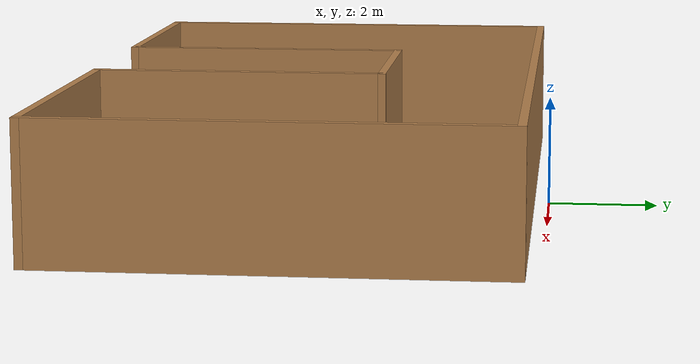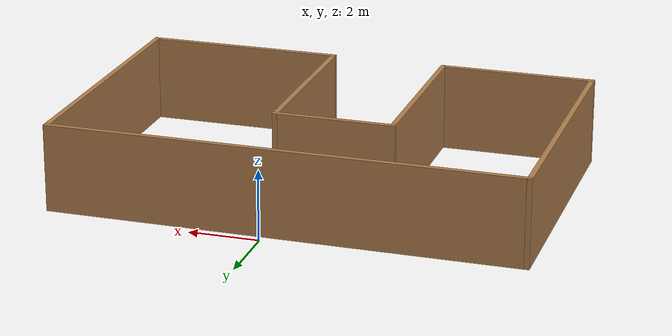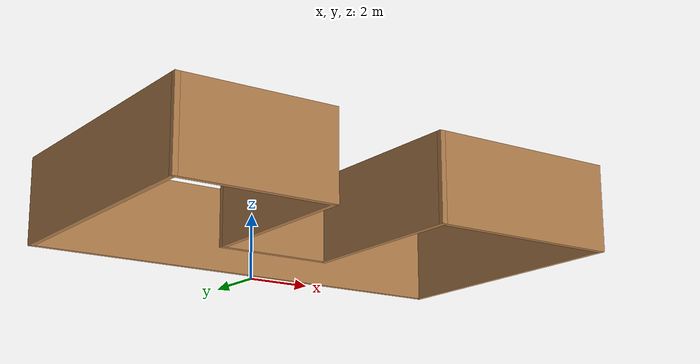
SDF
<?xml version='1.0'?>
<sdf version='1.6'>
  <model name='my_world'>
    <pose frame=''>-0.499181 -4.39383 0 0 -0 0</pose>
    <link name='Wall_10'>
      <collision name='Wall_10_Collision'>
        <geometry>
          <box>
            <size>8.25 0.15 2.5</size>
          </box>
        </geometry>
        <pose frame=''>0 0 1.25 0 -0 0</pose>
      </collision>
      <visual name='Wall_10_Visual'>
        <pose frame=''>0 0 1.25 0 -0 0</pose>
        <geometry>
          <box>
            <size>8.25 0.15 2.5</size>
          </box>
        </geometry>
        <material>
          <script>
            <uri>file://media/materials/scripts/gazebo.material</uri>
            <name>Gazebo/Wood</name>
          </script>
          <ambient>1 1 1 1</ambient>
        </material>
      </visual>
      <pose frame=''>-6.675 0 0 0 -0 1.5708</pose>
    </link>
    <link name='Wall_11'>
      <collision name='Wall_11_Collision'>
        <geometry>
          <box>
            <size>13.5 0.15 2.5</size>
          </box>
        </geometry>
        <pose frame=''>0 0 1.25 0 -0 0</pose>
      </collision>
      <visual name='Wall_11_Visual'>
        <pose frame=''>0 0 1.25 0 -0 0</pose>
        <geometry>
          <box>
            <size>13.5 0.15 2.5</size>
          </box>
        </geometry>
        <material>
          <script>
            <uri>file://media/materials/scripts/gazebo.material</uri>
            <name>Gazebo/Wood</name>
          </script>
          <ambient>1 1 1 1</ambient>
        </material>
      </visual>
      <pose frame=''>0 4.05 0 0 -0 0</pose>
    </link>
    <link name='Wall_12'>
      <collision name='Wall_12_Collision'>
        <geometry>
          <box>
            <size>8.25 0.15 2.5</size>
          </box>
        </geometry>
        <pose frame=''>0 0 1.25 0 -0 0</pose>
      </collision>
      <visual name='Wall_12_Visual'>
        <pose frame=''>0 0 1.25 0 -0 0</pose>
        <geometry>
          <box>
            <size>8.25 0.15 2.5</size>
          </box>
        </geometry>
        <material>
          <script>
            <uri>file://media/materials/scripts/gazebo.material</uri>
            <name>Gazebo/Wood</name>
          </script>
          <ambient>1 1 1 1</ambient>
        </material>
      </visual>
      <pose frame=''>6.675 0 0 0 0 -1.5708</pose>
    </link>
    <link name='Wall_13'>
      <collision name='Wall_13_Collision'>
        <geometry>
          <box>
            <size>5.75 0.15 2.5</size>
          </box>
        </geometry>
        <pose frame=''>0 0 1.25 0 -0 0</pose>
      </collision>
      <visual name='Wall_13_Visual'>
        <pose frame=''>0 0 1.25 0 -0 0</pose>
        <geometry>
          <box>
            <size>5.75 0.15 2.5</size>
          </box>
        </geometry>
        <material>
          <script>
            <uri>file://media/materials/scripts/gazebo.material</uri>
            <name>Gazebo/Wood</name>
          </script>
          <ambient>1 1 1 1</ambient>
        </material>
      </visual>
      <pose frame=''>3.875 -4.05 0 0 -0 3.14159</pose>
    </link>
    <link name='Wall_14'>
      <collision name='Wall_14_Collision'>
        <geometry>
          <box>
            <size>5.5 0.15 2.5</size>
          </box>
        </geometry>
        <pose frame=''>0 0 1.25 0 -0 0</pose>
      </collision>
      <visual name='Wall_14_Visual'>
        <pose frame=''>0 0 1.25 0 -0 0</pose>
        <geometry>
          <box>
            <size>5.5 0.15 2.5</size>
          </box>
        </geometry>
        <material>
          <script>
            <uri>file://media/materials/scripts/gazebo.material</uri>
            <name>Gazebo/Wood</name>
          </script>
          <ambient>1 1 1 1</ambient>
        </material>
      </visual>
      <pose frame=''>1.075 -1.375 0 0 -0 1.5708</pose>
    </link>
    <link name='Wall_15'>
      <collision name='Wall_15_Collision'>
        <geometry>
          <box>
            <size>3.5 0.15 2.5</size>
          </box>
        </geometry>
        <pose frame=''>0 0 1.25 0 -0 0</pose>
      </collision>
      <visual name='Wall_15_Visual'>
        <pose frame=''>0 0 1.25 0 -0 0</pose>
        <geometry>
          <box>
            <size>3.5 0.15 2.5</size>
          </box>
        </geometry>
        <material>
          <script>
            <uri>file://media/materials/scripts/gazebo.material</uri>
            <name>Gazebo/Wood</name>
          </script>
          <ambient>1 1 1 1</ambient>
        </material>
      </visual>
      <pose frame=''>-0.6 1.3 0 0 -0 3.14159</pose>
    </link>
    <link name='Wall_16'>
      <collision name='Wall_16_Collision'>
        <geometry>
          <box>
            <size>5.5 0.15 2.5</size>
          </box>
        </geometry>
        <pose frame=''>0 0 1.25 0 -0 0</pose>
      </collision>
      <visual name='Wall_16_Visual'>
        <pose frame=''>0 0 1.25 0 -0 0</pose>
        <geometry>
          <box>
            <size>5.5 0.15 2.5</size>
          </box>
        </geometry>
        <material>
          <script>
            <uri>file://media/materials/scripts/gazebo.material</uri>
            <name>Gazebo/Wood</name>
          </script>
          <ambient>1 1 1 1</ambient>
        </material>
      </visual>
      <pose frame=''>-2.275 -1.375 0 0 0 -1.5708</pose>
    </link>
    <link name='Wall_17'>
      <collision name='Wall_17_Collision'>
        <geometry>
          <box>
            <size>4.55 0.15 2.5</size>
          </box>
        </geometry>
        <pose frame=''>0 0 1.25 0 -0 0</pose>
      </collision>
      <visual name='Wall_17_Visual'>
        <pose frame=''>0 0 1.25 0 -0 0</pose>
        <geometry>
          <box>
            <size>4.55 0.15 2.5</size>
          </box>
        </geometry>
        <material>
          <script>
            <uri>file://media/materials/scripts/gazebo.material</uri>
            <name>Gazebo/Wood</name>
          </script>
          <ambient>1 1 1 1</ambient>
        </material>
      </visual>
      <pose frame=''>-4.475 -4.05 0 0 -0 3.14159</pose>
    </link>
    <static>1</static>
  </model>
</sdf>
